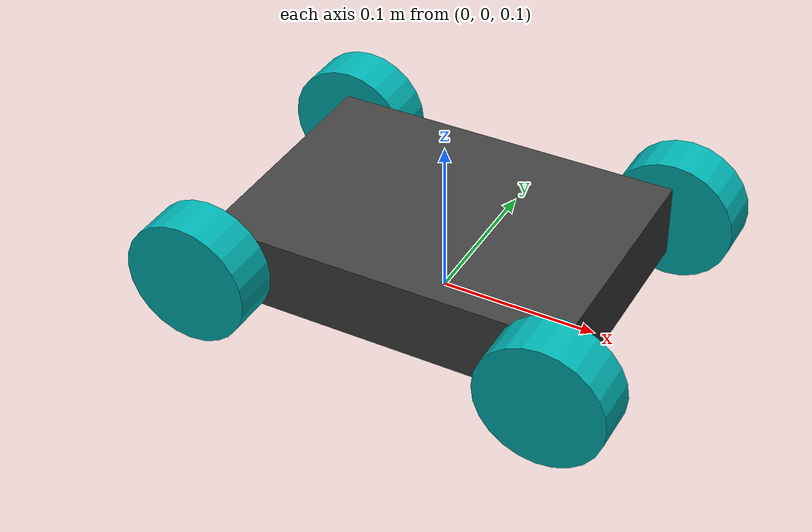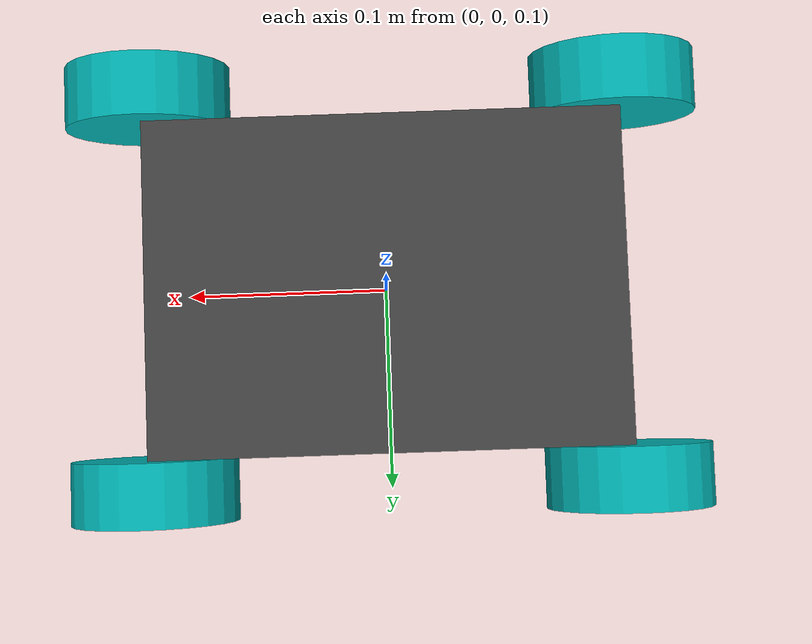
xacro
<?xml version="1.0"?>
<robot xmlns:xacro="http://www.ros.org/wiki/xacro" name="rover">
<xacro:property name="c1"       value="0.083"/>
<xacro:property name="c2"       value="0.5"/>
<xacro:property name="mass"     value="1"/>
<xacro:property name="width"    value="0.8"/>
<xacro:property name="height"   value="0.1"/>
<xacro:property name="depth"    value="0.7 "/>
<xacro:property name="radius"   value="0.15 "/>

<!-- COLORS -->
<material name="Blue">
  <color rgba=" 1 1 0 1"/>
</material>

<material name="Red">
  <color rgba="0 0 0 1"/>
</material>
<!-- BASE LINK AND JOINT -->
<!-- BASE LINK AND JOINT -->

  <link name="base_footprint"/>

  <link name="base_link">
    <visual>
      <origin xyz="0 0 0" rpy="0.0 0.0 0.0"/>
      <geometry>
        <box size="0.227 0.16 0.047" />
      </geometry>
      <material name="Blue">
        <color rgba="0.25 0.25 0.25 1.0"/>
      </material>
    </visual>
    <collision>
      <origin xyz="0 0 0" rpy="0.0 0.0 0.0"/>
      <geometry>
        <box size="0.8 0.7 0.1" />
      </geometry>
    </collision>
    <inertial>
      <mass value="0.5"/>
      <origin xyz="0.0 0.0 0" rpy="0.0 0.0 0.0"/>
      <inertia  ixx="${c1 * mass * (height * height + depth * depth)}" ixy="0.0" ixz="0.0"
                iyy="${c1 * mass * (height * height + depth * depth)}" iyz="0.0"
                izz="${c1 * mass * (height * height + depth * depth)}"/>
    </inertial>
  </link>

<joint name="base_joint" type="fixed">
		<origin xyz="0 0 0.135" rpy="0 0 0" />
		<parent link="base_footprint"/>
		<child link="base_link" />
	</joint>

<!--WHEEL LINKS AND JOINT -->

<xacro:macro name="wheel" params="name x y">
    <link name="wheel_${name}_link">
        <inertial>
            <origin xyz="0 0 0" rpy="0 0 0"/>
            <mass value="0.25"/>
            <inertia  ixx="${c2 * mass * (radius*radius)}" ixy="0.0" ixz="0.0"
                      iyy="${c2 * mass * (radius*radius)}" iyz="0.0"
                      izz="${c2 * mass * (radius*radius)}"/>
        </inertial>
        <visual name="wheel_${name}_visual">
            <origin xyz="0 0 0" rpy="1.57 0.0 0.0"/>
            <geometry>
              <cylinder radius="0.04" length="0.03"/>
            </geometry>
            <material name="Red">
              <color rgba="0 0.7 0.7 1.0"/>
            </material>
        </visual>
        <collision>
            <origin xyz="0 0 0" rpy="1.57 0.0 0.0"/>
            <geometry>
              <cylinder radius="0.04" length="0.03"/>
            </geometry>
        </collision>
    </link>
    <joint name="wheel_${name}_joint" type="continuous">
        <origin xyz="${x} ${y} 0" rpy="0 0 0"/>
        <parent link="base_link"/>
        <child link="wheel_${name}_link"/>
        <axis xyz="0 1 0"/>
        <limit velocity="100.0" effort="1000.0" />
        <dynamics damping="1.0" friction="1.0"/>
    </joint>
</xacro:macro>

<xacro:wheel name="front_left"  x="0.1135" y =" 0.095"/>
<xacro:wheel name="rear_left" x="-0.1135" y =" 0.095"/>
<xacro:wheel name="rear_right"  x="-0.1135" y =" -0.095"/>
<xacro:wheel name="front_right"   x="0.1135" y =" -0.095"/>

</robot>
